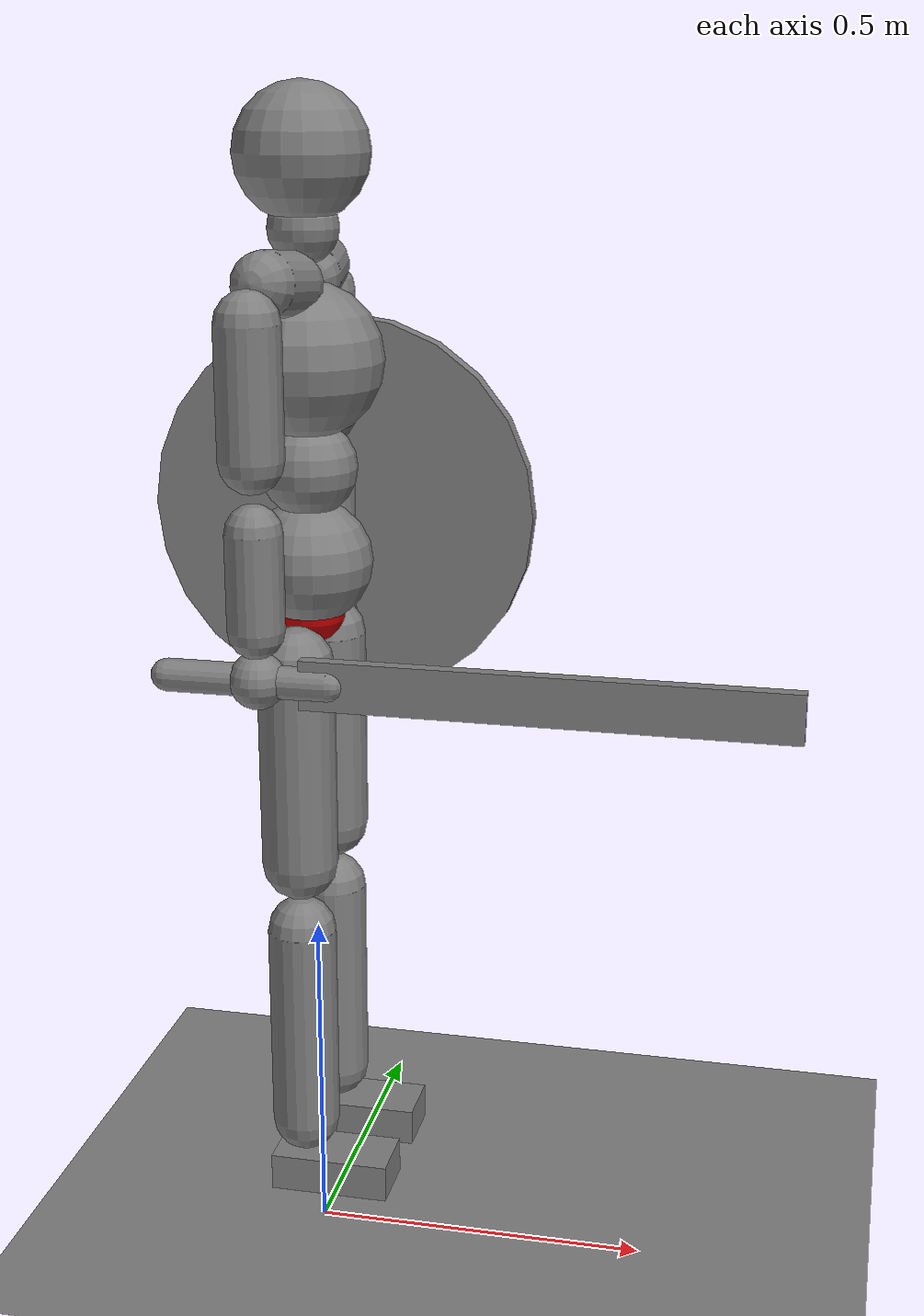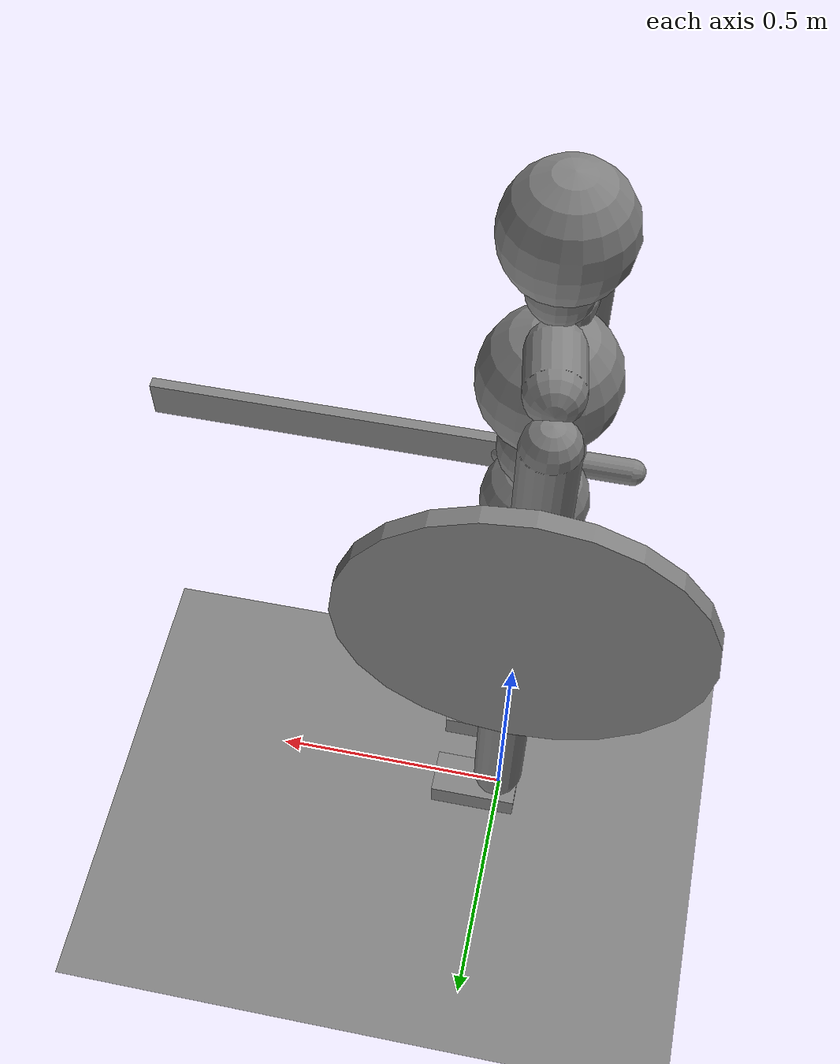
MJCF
<mujoco model="humanoid">

  <statistic extent="2" center="0 0 1"/>

  <option timestep="0.00333"/>

  <default>
    <motor ctrlrange="-1 1" ctrllimited="true"/>
    <default class="body">
      <geom type="capsule" condim="1" friction="1.0 0.05 0.05" solimp=".9 .99 .003" solref=".015 1"/>
      <site size=".04" group="3"/>
      <default class="force-torque">
        <site type="box" size=".01 .01 .02" rgba="1 0 0 1" />
      </default>
      <default class="touch">
        <site type="capsule" rgba="0 0 1 .3"/>
      </default>
    </default>
  </default>

  <worldbody>
    <geom name="floor" type="plane" conaffinity="1" size="100 100 .2"/>

    <site name="marker_1" pos="0 0 1" size="0.05" rgba="0.8 0.0 0.0 1" type="sphere"/>
    <site name="marker_2" pos="0 0 1" size="0.05" rgba="0.8 0.0 0.0 1" type="sphere"/>
    <site name="marker_3" pos="0 0 1" size="0.05" rgba="0.8 0.0 0.0 1" type="sphere"/>
    <site name="marker_4" pos="0 0 1" size="0.05" rgba="0.8 0.0 0.0 1" type="sphere"/>
    <site name="marker_5" pos="0 0 1" size="0.05" rgba="0.8 0.0 0.0 1" type="sphere"/>
    <site name="marker_6" pos="0 0 1" size="0.05" rgba="0.8 0.0 0.0 1" type="sphere"/>
    <site name="marker_7" pos="0 0 1" size="0.05" rgba="0.8 0.0 0.0 1" type="sphere"/>
    <site name="marker_8" pos="0 0 1" size="0.05" rgba="0.8 0.0 0.0 1" type="sphere"/>
    <site name="marker_9" pos="0 0 1" size="0.05" rgba="0.8 0.0 0.0 1" type="sphere"/>
    <site name="marker_10" pos="0 0 1" size="0.05" rgba="0.8 0.0 0.0 1" type="sphere"/>
    <site name="marker_11" pos="0 0 1" size="0.05" rgba="0.8 0.0 0.0 1" type="sphere"/>
    <site name="marker_12" pos="0 0 1" size="0.05" rgba="0.8 0.0 0.0 1" type="sphere"/>
    <site name="marker_13" pos="0 0 1" size="0.05" rgba="0.8 0.0 0.0 1" type="sphere"/>
    <site name="marker_14" pos="0 0 1" size="0.05" rgba="0.8 0.0 0.0 1" type="sphere"/>
    <site name="marker_15" pos="0 0 1" size="0.05" rgba="0.8 0.0 0.0 1" type="sphere"/>
    <site name="marker_16" pos="0 0 1" size="0.05" rgba="0.8 0.0 0.0 1" type="sphere"/>
    <site name="marker_17" pos="0 0 1" size="0.05" rgba="0.8 0.0 0.0 1" type="sphere"/>

    <body name="pelvis" pos="0 0 1" childclass="body">
      <freejoint name="root"/>
      <site name="root" class="force-torque"/>
      <geom name="pelvis" type="sphere" pos="0 0 0.07" size=".09" density="2226"/>
      <geom name="upper_waist" type="sphere" pos="0 0 0.205" size="0.07" density="2226"/>
      <site name="pelvis" class="touch" type="sphere" pos="0 0 0.07" size="0.091"/>
      <site name="upper_waist" class="touch" type="sphere" pos="0 0 0.205" size="0.071"/>

      <body name="torso" pos="0 0 0.236151">
        <light name="top" pos="0 0 2" mode="trackcom"/>
        <camera name="back" pos="-3 0 1" xyaxes="0 -1 0 1 0 2" mode="trackcom"/>
        <camera name="side" pos="0 -3 1" xyaxes="1 0 0 0 1 2" mode="trackcom"/>
        <joint name="abdomen_x" pos="0 0 0" axis="1 0 0" range="-60 60" stiffness="1000" damping="100" frictionloss="1000" armature=".02"/>
        <joint name="abdomen_y" pos="0 0 0" axis="0 1 0" range="-60 90" stiffness="1000" damping="100" frictionloss="1000" armature=".02"/>
        <joint name="abdomen_z" pos="0 0 0" axis="0 0 1" range="-50 50" stiffness="1000" damping="100" frictionloss="1000" armature=".02"/>
        <geom name="torso" type="sphere" pos="0 0 0.12" size="0.11" density="1794"/>
        <site name="torso" class="touch" type="sphere" pos="0 0 0.12" size="0.111"/>

        <geom name="right_clavicle" fromto="-0.0060125 -0.0457775 0.2287955 -0.016835 -0.128177 0.2376182" size=".045" density="1100"/>
        <geom name="left_clavicle" fromto="-0.0060125 0.0457775 0.2287955 -0.016835 0.128177 0.2376182" size=".045" density="1100"/>

        <body name="head" pos="0 0 0.223894">
          <joint name="neck_x" axis="1 0 0" range="-50 50" stiffness="100" damping="10" frictionloss="100" armature=".01"/>
          <joint name="neck_y" axis="0 1 0" range="-40 60" stiffness="100" damping="10" frictionloss="100" armature=".01"/>
          <joint name="neck_z" axis="0 0 1" range="-45 45" stiffness="100" damping="10" frictionloss="100" armature=".01"/>
          <geom name="head" type="sphere" pos="0 0 0.175" size="0.095" density="1081"/>
          <geom name="neck" type="sphere" pos="0 0 0.075" size="0.05" density="1081"/>
          <site name="head" class="touch" pos="0 0 0.175" type="sphere" size="0.103"/>
          <camera name="egocentric" pos=".103 0 0.175" xyaxes="0 -1 0 .1 0 1" fovy="80"/>
        </body>

        <body name="right_upper_arm" pos="-0.02405 -0.18311 0.24350">
          <joint name="right_shoulder_x" axis="1 0 0" range="-180 45" stiffness="400" damping="40" frictionloss="400" armature=".02"/>
          <joint name="right_shoulder_y" axis="0 1 0" range="-180 60" stiffness="400" damping="40" frictionloss="400" armature=".02"/>
          <joint name="right_shoulder_z" axis="0 0 1"  range="-90 90" stiffness="400" damping="40" frictionloss="400" armature=".02"/>
          <geom name="right_upper_arm" fromto="0 0 -0.05 0 0 -0.23" size=".045" density="982"/>
          <site name="right_upper_arm" class="touch" pos="0 0 -0.14" size="0.046 0.1" zaxis="0 0 1"/>

          <body name="right_lower_arm" pos="0 0 -0.274788">
            <joint name="right_elbow" axis="0 1 0" range="-160 0" stiffness="300" damping="30" frictionloss="300" armature=".01"/>
            <geom name="right_lower_arm" fromto="0 0 -0.0525 0 0 -0.1875" size="0.04" density="1056"/>
            <site name="right_lower_arm" class="touch" pos="0 0 -0.12" size="0.041 0.0685" zaxis="0 1 0"/>

            <body name="right_hand" pos="0 0 -0.258947">
              <joint name="right_hand_x" axis="1 0 0" range="-90 90" stiffness="100" damping="10" frictionloss="100" armature=".01"/>
              <joint name="right_hand_y" axis="0 1 0" range="-90 90" stiffness="100" damping="10" frictionloss="100" armature=".003"/>
              <joint name="right_hand_z" axis="0 0 1"  range="-90 90" stiffness="100" damping="10" frictionloss="100" armature=".003"/>
              <geom name="right_hand" type="sphere" size=".04" density="1865"/>
              <site name="right_hand" class="touch" type="sphere" size=".041"/>

              <body name="sword" pos="0.74 0 0">
                <geom name="sword_hilt" fromto="-0.87 0 0 -0.64 0 0" size="0.023" density="300"/>
			          <geom name="sword_blade" type="box" pos="-0.34 0 0" size="0.34 0.01 0.035" density="600"/>
              </body>
            </body>
          </body>
        </body>

        <body name="left_upper_arm" pos="-0.02405 0.18311 0.24350">
          <joint name="left_shoulder_x" axis="1 0 0" range="-45 180" stiffness="400" damping="40" frictionloss="400" armature=".02"/>
          <joint name="left_shoulder_y" axis="0 1 0" range="-180 60" stiffness="400" damping="40" frictionloss="400" armature=".02"/>
          <joint name="left_shoulder_z" axis="0 0 1"  range="-90 90" stiffness="400" damping="40" frictionloss="400" armature=".02"/>
          <geom name="left_upper_arm" fromto="0 0 -0.05 0 0 -0.23" size="0.045" density="982"/>
          <site name="left_upper_arm" class="touch" pos="0 0 -0.14" size="0.046 0.1" zaxis="0 0 1"/>

          <body name="left_lower_arm" pos="0 0 -0.274788">
            <joint name="left_elbow" axis="0 1 0" range="-160 0" stiffness="300" damping="30" frictionloss="300" armature=".01"/>
            <geom name="left_lower_arm" fromto="0 0 -0.0525 0 0 -0.1875" size="0.04" density="1056"/>
            <site name="left_lower_arm" class="touch" pos="0 0 -0.1" size="0.041 0.0685" zaxis="0 0 1"/>

            <body name="shield" pos="0 0.07 -0.12">
              <geom name="shield" type="cylinder" fromto="0 0 0 0 0.03 0" size="0.3" density="250"/>
            </body>

            <body name="left_hand" pos="0 0 -0.258947">
              <geom name="left_hand" type="sphere" size=".04" density="1865"/>
              <site name="left_hand" class="touch" type="sphere" size=".041"/>
            </body>
          </body>
        </body>
      </body>

      <body name="right_thigh" pos="0 -0.084887 0">
        <site name="right_hip" class="force-torque"/>
        <joint name="right_hip_x" axis="1 0 0" range="-60 15" stiffness="500" damping="50" frictionloss="500" armature=".02"/>
        <joint name="right_hip_y" axis="0 1 0" range="-140 60" stiffness="500" damping="50" frictionloss="500" armature=".02"/>
        <joint name="right_hip_z" axis="0 0 1" range="-60 35" stiffness="500" damping="50" frictionloss="500" armature=".02"/>
        <geom name="right_thigh" fromto="0 0 -0.06 0 0 -0.36" size="0.055" density="1269"/>
        <site name="right_thigh" class="touch" pos="0 0 -0.21" size="0.056 0.301" zaxis="0 0 -1"/>

        <body name="right_shin" pos="0 0 -0.421546">
          <site name="right_knee" class="force-torque" pos="0 0 0"/>
          <joint name="right_knee" pos="0 0 0" axis="0 1 0" range="0 160" stiffness="500" damping="50" frictionloss="500" armature=".02"/>
          <geom name="right_shin" fromto="0 0 -0.045 0 0 -0.355"  size=".05" density="1014"/>
          <site name="right_shin" class="touch" pos="0 0 -0.2" size="0.051 0.156" zaxis="0 0 -1"/>

          <body name="right_foot" pos="0 0 -0.409870">
            <site name="right_ankle" class="force-torque"/>
            <joint name="right_ankle_x" pos="0 0 0" axis="1 0 0" range="-30 30" stiffness="400" damping="40" frictionloss="400" armature=".01"/>
            <joint name="right_ankle_y" pos="0 0 0" axis="0 1 0" range="-55 55" stiffness="400" damping="40" frictionloss="400" armature=".01"/>
            <joint name="right_ankle_z" pos="0 0 0" axis="0 0 1" range="-40 40" stiffness="400" damping="40" frictionloss="400" armature=".01"/>
            <geom name="right_foot" type="box" pos="0.045 0 -0.0225" size="0.0885 0.045 0.0275" density="1141"/>
            <site name="right_foot" class="touch" type="box" pos="0.045 0 -0.0225" size="0.0895 0.055 0.0285"/>
          </body>
        </body>
      </body>

      <body name="left_thigh" pos="0 0.084887 0">
        <site name="left_hip" class="force-torque"/>
        <joint name="left_hip_x" axis="1 0 0" range="-15 60" stiffness="500" damping="50" frictionloss="500" armature=".02"/>
        <joint name="left_hip_y" axis="0 1 0" range="-140 60" stiffness="500" damping="50" frictionloss="500" armature=".02"/>
        <joint name="left_hip_z" axis="0 0 1" range="-35 60" stiffness="500" damping="50" frictionloss="500" armature=".02"/>
        <geom name="left_thigh" fromto="0 0 -0.06 0 0 -0.36" size=".055" density="1269"/>
        <site name="left_thigh" class="touch" pos="0 0 -0.21" size="0.056 0.301" zaxis="0 0 -1"/>

        <body name="left_shin" pos="0 0 -0.421546">
          <site name="left_knee" class="force-torque" pos="0 0 .02"/>
          <joint name="left_knee" pos="0 0 0" axis="0 1 0" range="0 160" stiffness="500" damping="50" frictionloss="500" armature=".02"/>
          <geom name="left_shin" fromto="0 0 -0.045 0 0 -0.355"  size=".05" density="1014"/>
          <site name="left_shin" class="touch" pos="0 0 -0.2" size="0.051 0.156" zaxis="0 0 -1"/>

          <body name="left_foot" pos="0 0 -0.409870">
            <site name="left_ankle" class="force-torque"/>
            <joint name="left_ankle_x" pos="0 0 0" axis="1 0 0" range="-30 30" stiffness="400" damping="40" frictionloss="400" armature=".01"/>
            <joint name="left_ankle_y" pos="0 0 0" axis="0 1 0" range="-55 55" stiffness="400" damping="40" frictionloss="400" armature=".01"/>
            <joint name="left_ankle_z" pos="0 0 0" axis="0 0 1" range="-40 40" stiffness="400" damping="40" frictionloss="400" armature=".01"/>
            <geom name="left_foot" type="box" pos="0.045 0 -0.0225" size="0.0885 0.045 0.0275" density="1141"/>
            <site name="left_foot" class="touch" type="box" pos="0.045 0 -0.0225" size="0.0895 0.055 0.0285"/>
          </body>
        </body>
      </body>
    </body>
  </worldbody>

  <actuator>
    <position name='abdomen_x'       		joint='abdomen_x'/>
    <position name='abdomen_y'       		joint='abdomen_y'/>
    <position name='abdomen_z'       		joint='abdomen_z'/>
    <position name='neck_x'          		joint='neck_x'/>
    <position name='neck_y'             	joint='neck_y'/>
    <position name='neck_z'           		joint='neck_z'/>
    <position name='right_shoulder_x' 		joint='right_shoulder_x'/>
    <position name='right_shoulder_y' 		joint='right_shoulder_y'/>
    <position name='right_shoulder_z' 		joint='right_shoulder_z'/>
    <position name='right_elbow'     		joint='right_elbow'/>
    <position name='right_hand_x' 	  		joint='right_hand_x'/>
    <position name='right_hand_y'    		joint='right_hand_y'/>
    <position name='right_hand_z'    		joint='right_hand_z'/>
    <position name='left_shoulder_x' 		joint='left_shoulder_x'/>
    <position name='left_shoulder_y' 		joint='left_shoulder_y'/>
    <position name='left_shoulder_z' 		joint='left_shoulder_z'/>
    <position name='left_elbow'      		joint='left_elbow'/>
    <position name='right_hip_x'     		joint='right_hip_x'/>
    <position name='right_hip_y'     		joint='right_hip_y'/>
    <position name='right_hip_z'     		joint='right_hip_z'/>
    <position name='right_knee'      		joint='right_knee'/>
    <position name='right_ankle_x'   		joint='right_ankle_x'/>
    <position name='right_ankle_y'   		joint='right_ankle_y'/>
    <position name='right_ankle_z'   		joint='right_ankle_z'/>
    <position name='left_hip_x'      		joint='left_hip_x'/>
    <position name='left_hip_y'      		joint='left_hip_y'/>
    <position name='left_hip_z'      		joint='left_hip_z'/>
    <position name='left_knee'       		joint='left_knee'/>
    <position name='left_ankle_x'    		joint='left_ankle_x'/>
    <position name='left_ankle_y'    		joint='left_ankle_y'/>
    <position name='left_ankle_z'    		joint='left_ankle_z'/>
  </actuator>

  <sensor>
    <subtreelinvel name="pelvis_subtreelinvel" body="pelvis"/>
    <accelerometer name="root_accel"    site="root"/>
    <velocimeter name="root_vel"        site="root"/>
    <gyro name="root_gyro"              site="root"/>

    <force name="left_ankle_force"       site="left_ankle"/>
    <force name="right_ankle_force"      site="right_ankle"/>
    <force name="left_knee_force"        site="left_knee"/>
    <force name="right_knee_force"       site="right_knee"/>
    <force name="left_hip_force"         site="left_hip"/>
    <force name="right_hip_force"        site="right_hip"/>

    <torque name="left_ankle_torque"     site="left_ankle"/>
    <torque name="right_ankle_torque"    site="right_ankle"/>
    <torque name="left_knee_torque"      site="left_knee"/>
    <torque name="right_knee_torque"     site="right_knee"/>
    <torque name="left_hip_torque"       site="left_hip"/>
    <torque name="right_hip_torque"      site="right_hip"/>

    <touch name="pelvis_touch"           site="pelvis"/>
    <touch name="upper_waist_touch"      site="upper_waist"/>
    <touch name="torso_touch"            site="torso"/>
    <touch name="head_touch"             site="head"/>
    <touch name="right_upper_arm_touch"  site="right_upper_arm"/>
    <touch name="right_lower_arm_touch"  site="right_lower_arm"/>
    <touch name="right_hand_touch"       site="right_hand"/>
    <touch name="left_upper_arm_touch"   site="left_upper_arm"/>
    <touch name="left_lower_arm_touch"   site="left_lower_arm"/>
    <touch name="left_hand_touch"        site="left_hand"/>
    <touch name="right_thigh_touch"      site="right_thigh"/>
    <touch name="right_shin_touch"       site="right_shin"/>
    <touch name="right_foot_touch"       site="right_foot"/>
    <touch name="left_thigh_touch"       site="left_thigh"/>
    <touch name="left_shin_touch"        site="left_shin"/>
    <touch name="left_foot_touch"        site="left_foot"/>
  </sensor>

</mujoco>
